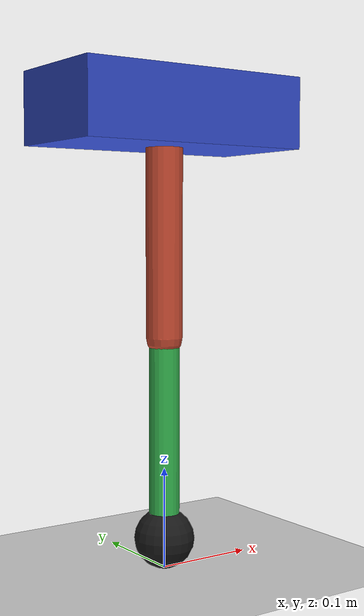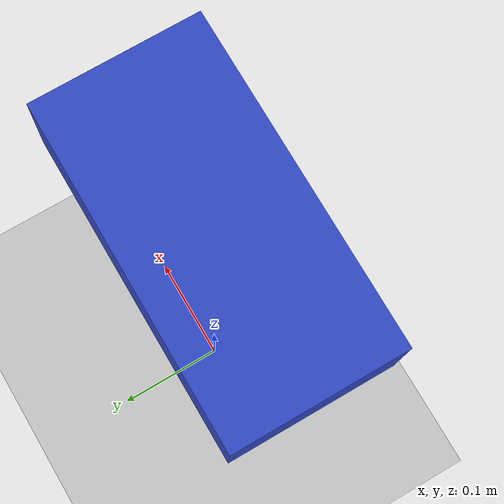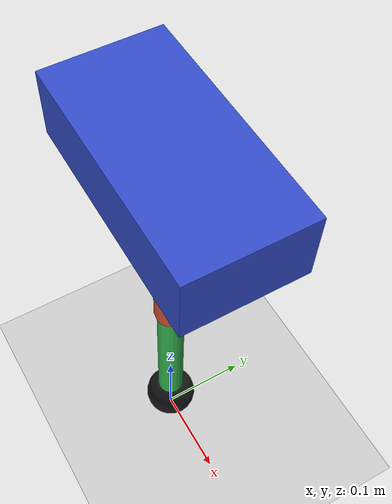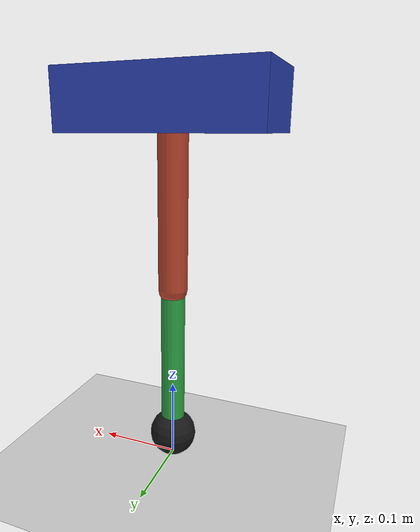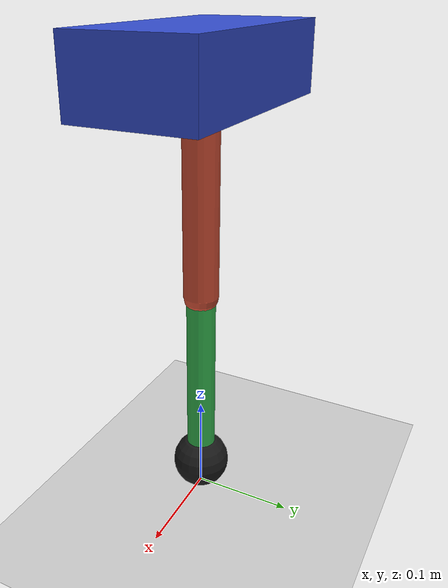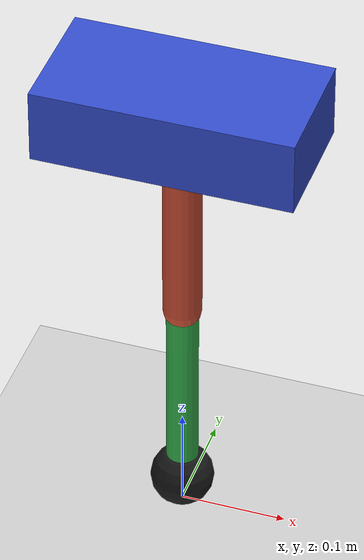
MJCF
<mujoco model="stage00_minimal_leg">
  <compiler angle="radian"/>
  <option timestep="0.002" gravity="0 0 -9.81"/>

  <default>
    <joint damping="0.1" armature="0.01"/>
    <geom friction="1.0 0.005 0.0001"/>
  </default>

  <worldbody>
    <light name="top_light" pos="0 0 2"/>
    <geom name="floor" type="plane" size="3 3 0.05" rgba="0.8 0.8 0.8 1"/>

    <body name="base" pos="0 0 0.45">
      <freejoint name="base_free"/>
      <geom name="base_geom" type="box" size="0.12 0.06 0.035" mass="2.0" rgba="0.2 0.3 0.8 1"/>

      <body name="upper_leg" pos="0 0 -0.02">
        <joint name="hip_joint" type="hinge" axis="0 1 0" range="-1.5 1.5" limited="true"/>
        <geom name="upper_leg_geom" type="capsule" fromto="0 0 0 0 0 -0.20" size="0.018" mass="0.25" rgba="0.8 0.3 0.2 1"/>

        <body name="lower_leg" pos="0 0 -0.20">
          <joint name="knee_joint" type="hinge" axis="0 1 0" range="-2.5 0.2" limited="true"/>
          <geom name="lower_leg_geom" type="capsule" fromto="0 0 0 0 0 -0.20" size="0.015" mass="0.20" rgba="0.2 0.7 0.3 1"/>

          <body name="foot" pos="0 0 -0.20">
            <geom name="foot_geom" type="sphere" size="0.03" mass="0.05" rgba="0.1 0.1 0.1 1"/>
          </body>
        </body>
      </body>
    </body>
  </worldbody>

  <actuator>
    <motor name="hip_motor" joint="hip_joint" gear="1" ctrllimited="true" ctrlrange="-5 5"/>
    <motor name="knee_motor" joint="knee_joint" gear="1" ctrllimited="true" ctrlrange="-5 5"/>
  </actuator>
</mujoco>
